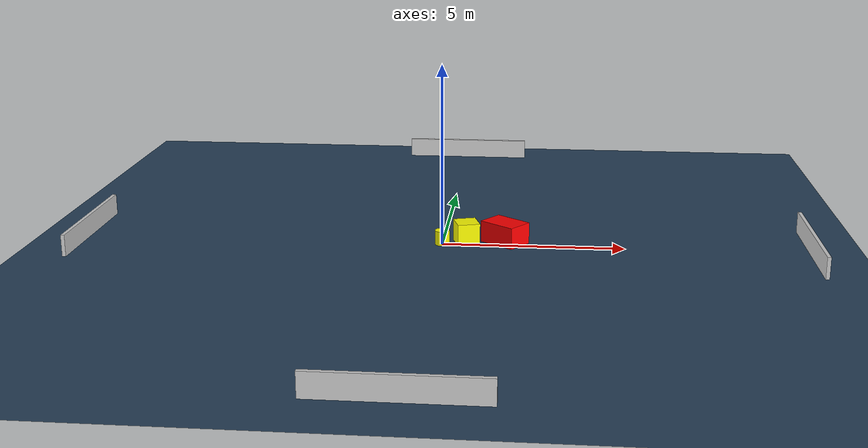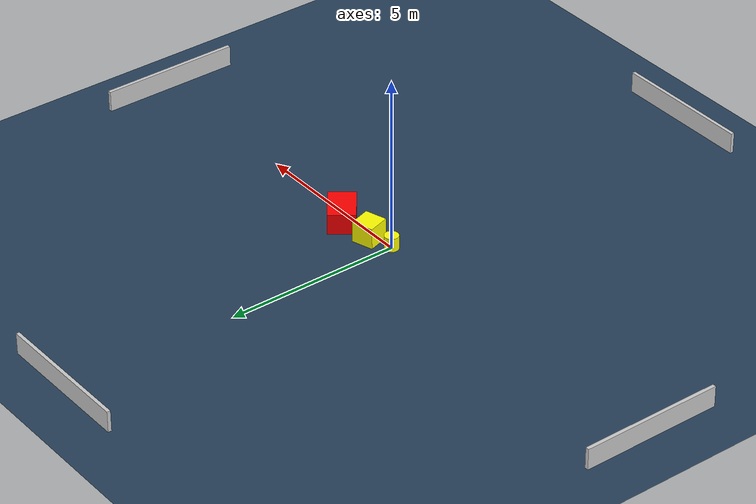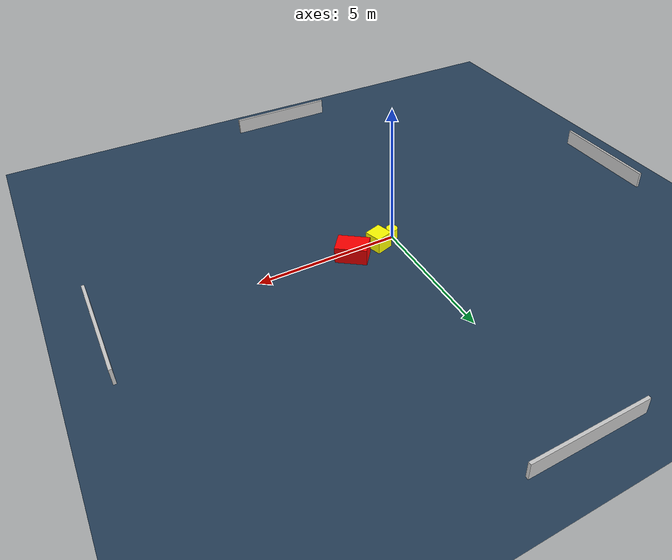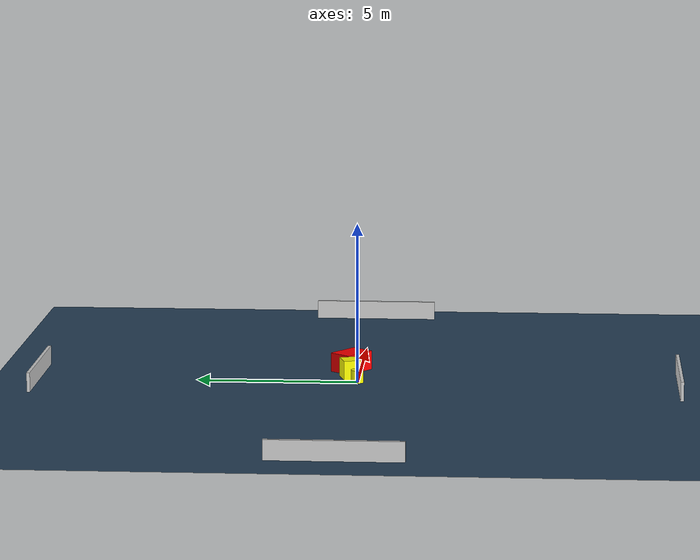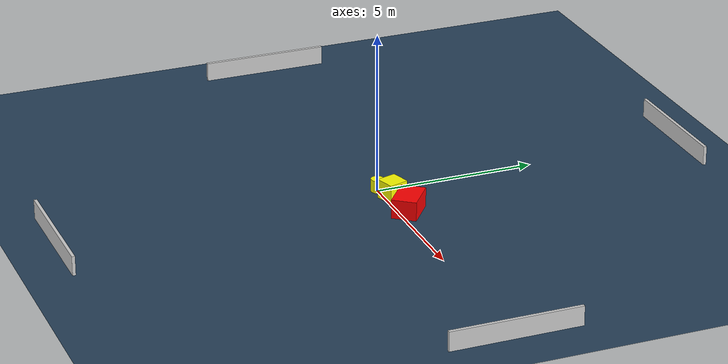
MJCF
<?xml version="1.0" ?>
<mujoco model="generated_environment">
  <option timestep="0.01" integrator="RK4" cone="elliptic"/>
  <default>
    <geom density="1"/>
  </default>
  <asset>
    <texture builtin="gradient" height="3072" name="skybox" rgb1="0.3 0.5 0.7" rgb2="0 0 0" type="skybox" width="512"/>
    <texture builtin="checker" height="300" name="groundplane" rgb1="0.2 0.3 0.4" rgb2="0.1 0.2 0.3" type="2d" width="300"/>
    <material name="groundplane" reflectance="0.2" texrepeat="5 5" texture="groundplane"/>
  </asset>
  <worldbody>
    <light dir="0 0 -1" directional="true" pos="0 0 1.5"/>
    <geom condim="3" friction="0.5 0.005 0.001" material="groundplane" name="floor" pos="0 0 0" size="0 0 0.05" type="plane"/>
    <body name="walls">
      <geom name="wall_1" condim="4" pos="-10.0 0.0 0.3" rgba="0.800000011920929 0.800000011920929 0.800000011920929 1.0" size="0.05 2.0 0.3" type="box"/>
      <geom name="wall_2" condim="4" pos="10.0 0.0 0.3" rgba="0.800000011920929 0.800000011920929 0.800000011920929 1.0" size="0.05 2.0 0.3" type="box"/>
      <geom name="wall_3" condim="4" pos="0.0 -10.0 0.3" rgba="0.800000011920929 0.800000011920929 0.800000011920929 1.0" size="2.0 0.05 0.3" type="box"/>
      <geom name="wall_4" condim="4" pos="0.0 10.0 0.3" rgba="0.800000011920929 0.800000011920929 0.800000011920929 1.0" size="2.0 0.05 0.3" type="box"/>
    </body>
    <body name="robot">
      <joint name="joint_x" type="slide" pos="0 0 0" axis="1 0 0"/>
      <joint name="joint_y" type="slide" pos="0 0 0" axis="0 1 0"/>
      <geom name="robot" type="cylinder" pos="0.0 0.0 0.2" size="0.2 0.2 0.0" mass="5.0" friction="1.0 0.005 0.0001" condim="4" rgba="1.0 1.0 0.0 1.0"/>
    </body>
    <body name="obstacle_1_movable">
      <geom name="obstacle_1_movable" condim="4" pos="0.6555082855607857 0.22178799614034672 0.3" euler="0 0 17.06168853333117" friction="0.0 0.005 0.001" rgba="1.0 1.0 0.0 1.0" size="0.31021043738073945 0.31206832698520676 0.3" type="box" mass="0.1"/>
      <joint type="free"/>
    </body>
    <body name="obstacle_2_static">
      <geom name="obstacle_2_static" condim="4" pos="1.7155115093467657 0.30012785293116057 0.3" euler="0 0 142.4924217653448" friction="0.0 0.005 0.001" rgba="1.0 0.0 0.0 1.0" size="0.5495719990140645 0.3815415104989416 0.3" type="box"/>
    </body>
  </worldbody>
  <actuator>
    <motor name="actuator_x" joint="joint_x" gear="1" ctrlrange="-1 1"/>
    <motor name="actuator_y" joint="joint_y" gear="1" ctrlrange="-1 1"/>
  </actuator>
</mujoco>
